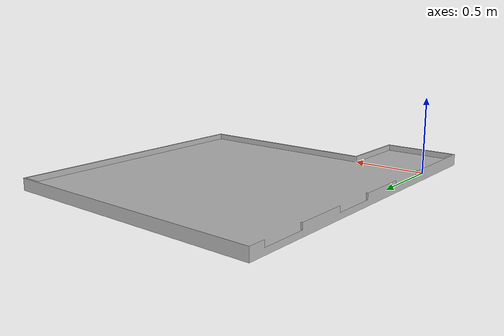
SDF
<?xml version='1.0'?>
<sdf version="1.6">
<model name="rule2019">
  <pose>0 0 0 0 0 0</pose>
    <link name="link">
      <inertial>
        <mass>0.0562</mass>
        <inertia>
          <ixx>0.293</ixx>
          <ixy>0.0</ixy>
          <ixz>0.0</ixz>
          <iyy>0.005</iyy>
          <iyz>0.0</iyz>
          <izz>0.297</izz>
        </inertia>
      </inertial>
      <collision name="collision">
        <geometry>
	  <mesh>
		  <uri>model://rule2019/rule2019.dae</uri>
          </mesh>
        </geometry>
      </collision>
      <visual name="visual">
        <geometry>
          <mesh>
		  <uri>model://rule2019/rule2019.dae</uri>
          </mesh>
        </geometry>
      </visual>
    </link>
  </model>
</sdf>
